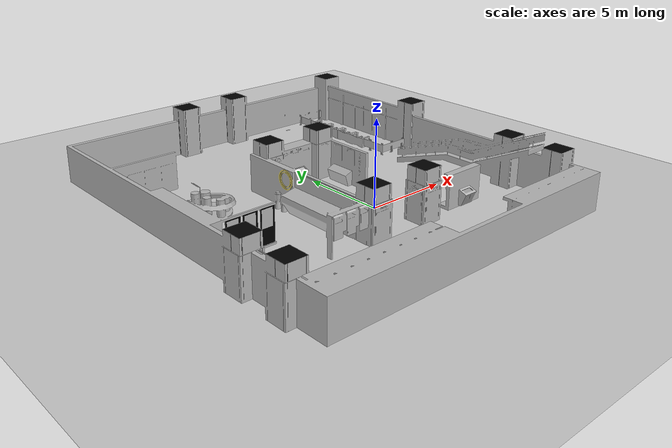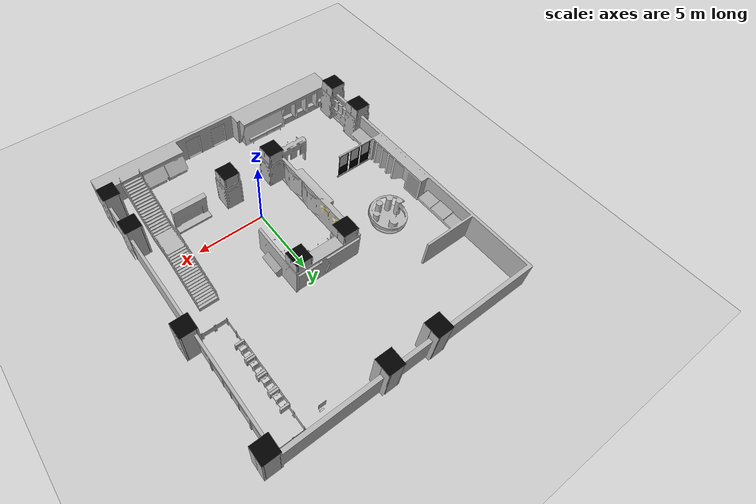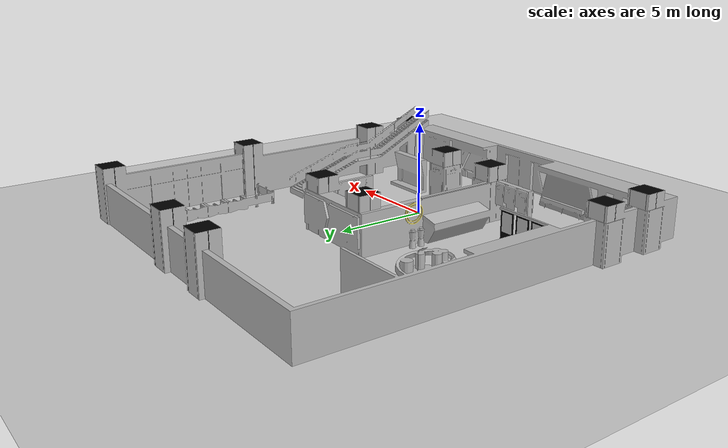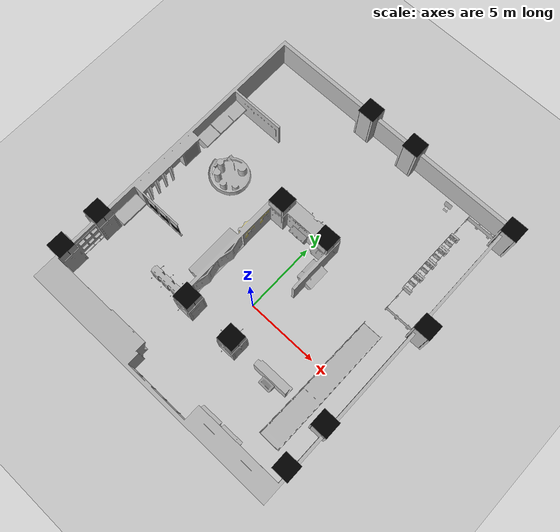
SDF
<sdf version="1.6">
 <world name="default">
  <light name="sun" type="directional">
   <pose>0 0 10 0 -0 0</pose>
   <diffuse>0.8 0.8 0.8 1</diffuse>
   <specular>0.1 0.1 0.1 1</specular>
   <attenuation>
    <range>1000</range>
    <constant>0.9</constant>
    <linear>0.01</linear>
    <quadratic>0.001</quadratic>
   </attenuation>
   <direction>-0.5 0.5 -1</direction>
  </light>
  <model name="ground_plane">
   <static>1</static>
   <link name="link">
    <collision name="collision">
     <geometry><plane><normal>0 0 1</normal><size>100 100</size></plane></geometry>
     <surface><friction><ode><mu>100</mu><mu2>50</mu2></ode></friction></surface>
    </collision>
    <visual name="visual">
     <cast_shadows>0</cast_shadows>
     <geometry><plane><normal>0 0 1</normal><size>100 100</size></plane></geometry>
     <material>
      <script><uri>file://media/materials/scripts/gazebo.material</uri><name>Gazebo/Grey</name></script>
     </material>
    </visual>
   </link>
  </model>
  <plugin name="vrc_plugin" filename="libVRCPlugin.so">
   <atlas><model_name>atlas</model_name><pin_link>utorso</pin_link></atlas>
   <drc_vehicle><model_name>golf_cart</model_name><seat_link>chassis</seat_link></drc_vehicle>
   <drc_fire_hose>
    <fire_hose_model>fire_hose</fire_hose_model>
    <coupling_link>coupling</coupling_link>
    <standpipe_model>standpipe</standpipe_model>
    <spout_link>standpipe</spout_link>
    <thread_pitch>-1000</thread_pitch>
    <coupling_relative_pose>1.17038e-05 -0.125623 0.35 -0.0412152 -1.57078 1.61199</coupling_relative_pose>
   </drc_fire_hose>
  </plugin>
  <plugin name="vrc_scoring" filename="libVRCScoringPlugin.so"/>
  <light name="sun" type="directional">
   <pose>0 0 10 0 -0 0</pose>
   <diffuse>0.8 0.8 0.8 1</diffuse>
   <specular>0.1 0.1 0.1 1</specular>
   <attenuation>
    <range>1000</range>
    <constant>0.9</constant>
    <linear>0.01</linear>
    <quadratic>0.001</quadratic>
   </attenuation>
   <direction>-0.5 0.5 -1</direction>
  </light>
  <model name="ground_plane">
   <static>1</static>
   <link name="link">
    <collision name="collision">
     <geometry><plane><normal>0 0 1</normal><size>100 100</size></plane></geometry>
     <surface><friction><ode><mu>100</mu><mu2>50</mu2></ode></friction></surface>
    </collision>
    <visual name="visual">
     <cast_shadows>0</cast_shadows>
     <geometry><plane><normal>0 0 1</normal><size>100 100</size></plane></geometry>
     <material>
      <script><uri>file://media/materials/scripts/gazebo.material</uri><name>Gazebo/Grey</name></script>
     </material>
    </visual>
   </link>
  </model>
  <gravity>0 0 -9.8</gravity>
  <magnetic_field>6e-06 2.3e-05 -4.2e-05</magnetic_field>
  <atmosphere type="adiabatic"/>
  <physics name="default_physics" default="0" type="ode">
   <real_time_update_rate>2000</real_time_update_rate>
   <max_step_size>0.0005</max_step_size>
   <ode>
    <solver>
     <type>quick</type>
     <iters>200</iters>
     <sor>1.1</sor>
     <use_dynamic_moi_rescaling>0</use_dynamic_moi_rescaling>
    </solver>
    <constraints>
     <cfm>0.0001</cfm>
     <erp>0.2</erp>
     <contact_max_correcting_vel>100</contact_max_correcting_vel>
     <contact_surface_layer>0</contact_surface_layer>
    </constraints>
   </ode>
   <real_time_factor>1</real_time_factor>
  </physics>
  <scene><ambient>0.4 0.4 0.4 1</ambient><background>0.7 0.7 0.7 1</background><shadows>1</shadows></scene>
  <spherical_coordinates>
   <surface_model>EARTH_WGS84</surface_model>
   <latitude_deg>0</latitude_deg>
   <longitude_deg>0</longitude_deg>
   <elevation>0</elevation>
   <heading_deg>0</heading_deg>
  </spherical_coordinates>
  <gravity>0 0 -9.81</gravity>
  <model name="iscas_museum">
   <link name="link">
    <inertial><mass>15</mass></inertial>
    <collision name="collision">
     <pose>0 0 0 0 0 -1.57</pose>
     <geometry><mesh><uri>model://iscas_museum/meshes/ISCAS_museum.dae</uri><scale>1 1 1</scale></mesh></geometry>
    </collision>
    <visual name="visual">
     <pose>0 0 0 0 0 -1.57</pose>
     <geometry><mesh><uri>model://iscas_museum/meshes/ISCAS_museum.dae</uri><scale>1 1 1</scale></mesh></geometry>
    </visual>
   </link>
   <static>1</static>
   <pose>-1.25307 2.7754 0 0 -0 0</pose>
  </model>
 </world>
</sdf>
